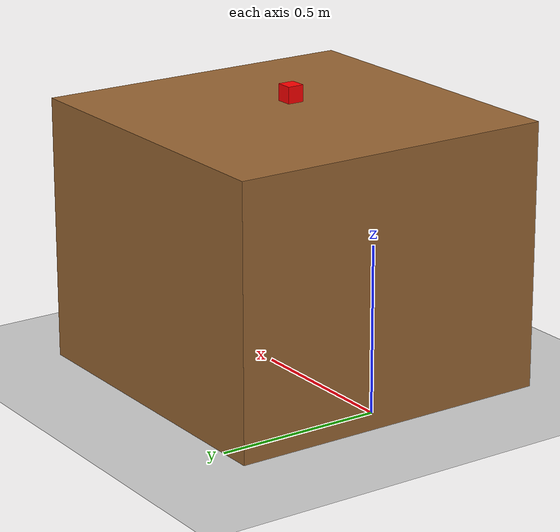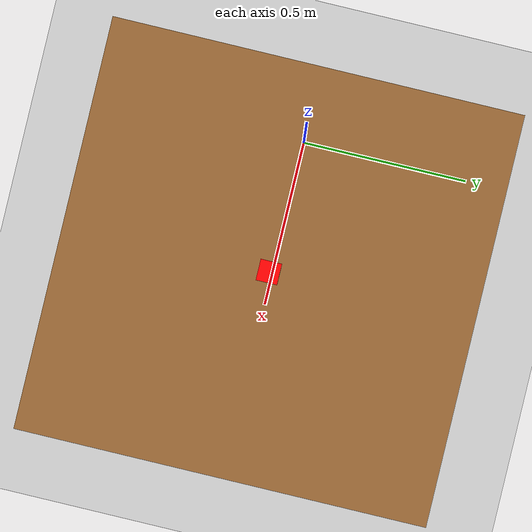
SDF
<?xml version="1.0" ?>
<sdf version="1.8">
  <world name="vla_world">
    <physics name="1ms" type="ignored">
      <max_step_size>0.001</max_step_size>
      <real_time_factor>1.0</real_time_factor>
    </physics>
    <plugin filename="gz-sim-physics-system" name="gz::sim::systems::Physics"/>
    <plugin filename="gz-sim-sensors-system" name="gz::sim::systems::Sensors">
      <render_engine>ogre2</render_engine>
    </plugin>
    <plugin filename="gz-sim-scene-broadcaster-system" name="gz::sim::systems::SceneBroadcaster"/>
    <plugin filename="gz-sim-user-commands-system" name="gz::sim::systems::UserCommands"/>

    <light type="directional" name="sun">
      <cast_shadows>true</cast_shadows>
      <pose>0 0 10 0 0 0</pose>
      <diffuse>0.8 0.8 0.8 1</diffuse>
      <specular>0.2 0.2 0.2 1</specular>
      <attenuation>
        <range>1000</range>
        <constant>0.9</constant>
        <linear>0.01</linear>
        <quadratic>0.001</quadratic>
      </attenuation>
      <direction>-0.5 0.1 -0.9</direction>
    </light>

    <model name="ground_plane">
      <static>true</static>
      <link name="link">
        <collision name="collision">
          <geometry>
            <plane>
              <normal>0 0 1</normal>
            </plane>
          </geometry>
        </collision>
        <visual name="visual">
          <geometry>
            <plane>
              <normal>0 0 1</normal>
              <size>100 100</size>
            </plane>
          </geometry>
          <material>
            <ambient>0.8 0.8 0.8 1</ambient>
            <diffuse>0.8 0.8 0.8 1</diffuse>
          </material>
        </visual>
      </link>
    </model>

    <model name="table">
      <static>true</static>
      <pose>0.4 0 0.4 0 0 0</pose>
      <link name="link">
        <collision name="collision">
          <geometry>
            <box><size>1.0 1.0 0.8</size></box>
          </geometry>
        </collision>
        <visual name="visual">
          <geometry>
            <box><size>1.0 1.0 0.8</size></box>
          </geometry>
          <material>
            <ambient>0.6 0.4 0.2 1</ambient>
          </material>
        </visual>
      </link>
    </model>

    <!-- Target Red Block -->
    <include>
      <uri>model://red_block</uri>
      <pose>0.4 0.0 0.85 0 0 0</pose>
    </include>

    <!-- Simulated RGB-D Camera -->
    <model name="camera_model">
      <static>true</static>
      <pose>0.0 0.0 1.5 0 0.5 0</pose>
      <link name="camera_link">
        <sensor name="rgbd_camera" type="rgbd_camera">
          <camera>
            <horizontal_fov>1.047</horizontal_fov>
            <image>
              <width>640</width>
              <height>480</height>
            </image>
            <clip>
              <near>0.1</near>
              <far>3.0</far>
            </clip>
          </camera>
          <always_on>1</always_on>
          <update_rate>10</update_rate>
          <visualize>true</visualize>
          <topic>camera</topic>
        </sensor>
      </link>
    </model>
  </world>
</sdf>

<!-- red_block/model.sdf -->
<sdf version="1.6">
  <model name="red_block">
    <static>false</static>
    <link name="link">
      <inertial>
        <mass>0.05</mass>
        <inertia>
          <ixx>0.0001</ixx> <iyy>0.0001</iyy> <izz>0.0001</izz>
          <ixy>0.0</ixy> <ixz>0.0</ixz> <iyz>0.0</iyz>
        </inertia>
      </inertial>
      <collision name="collision">
        <geometry>
          <box>
            <size>0.05 0.05 0.05</size>
          </box>
        </geometry>
      </collision>
      <visual name="visual">
        <geometry>
          <box>
            <size>0.05 0.05 0.05</size>
          </box>
        </geometry>
        <material>
          <ambient>1 0 0 1</ambient>
          <diffuse>1 0 0 1</diffuse>
        </material>
      </visual>
    </link>
  </model>
</sdf>
